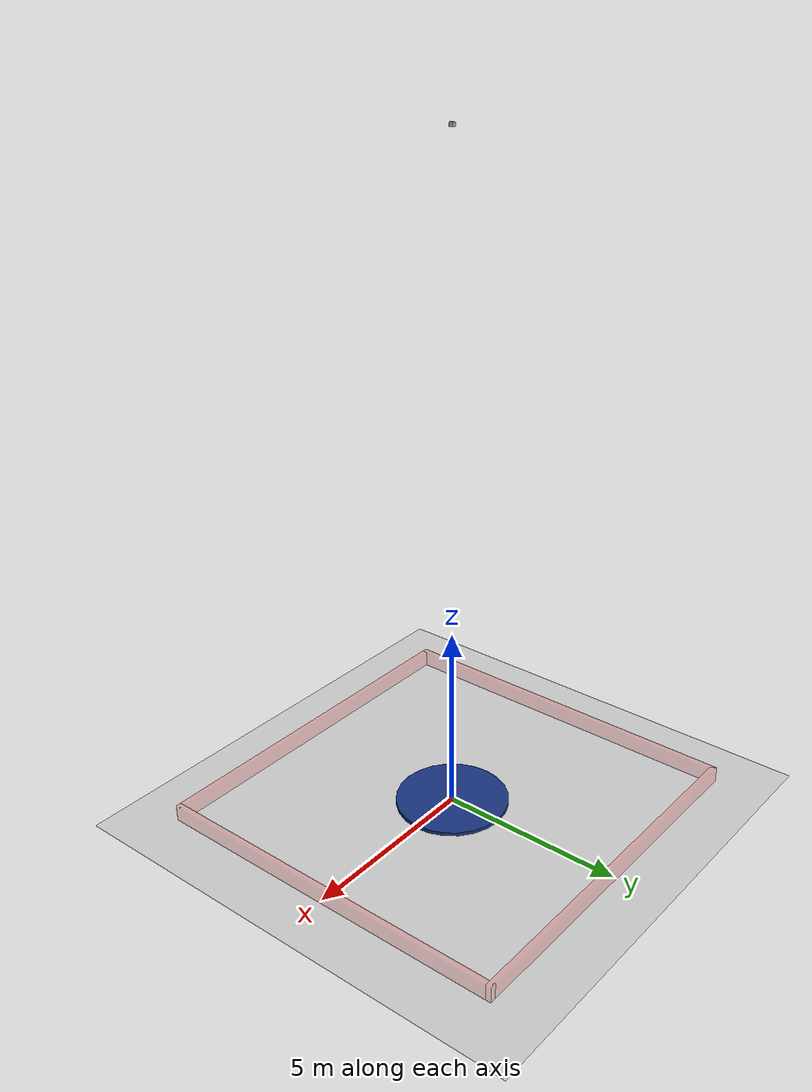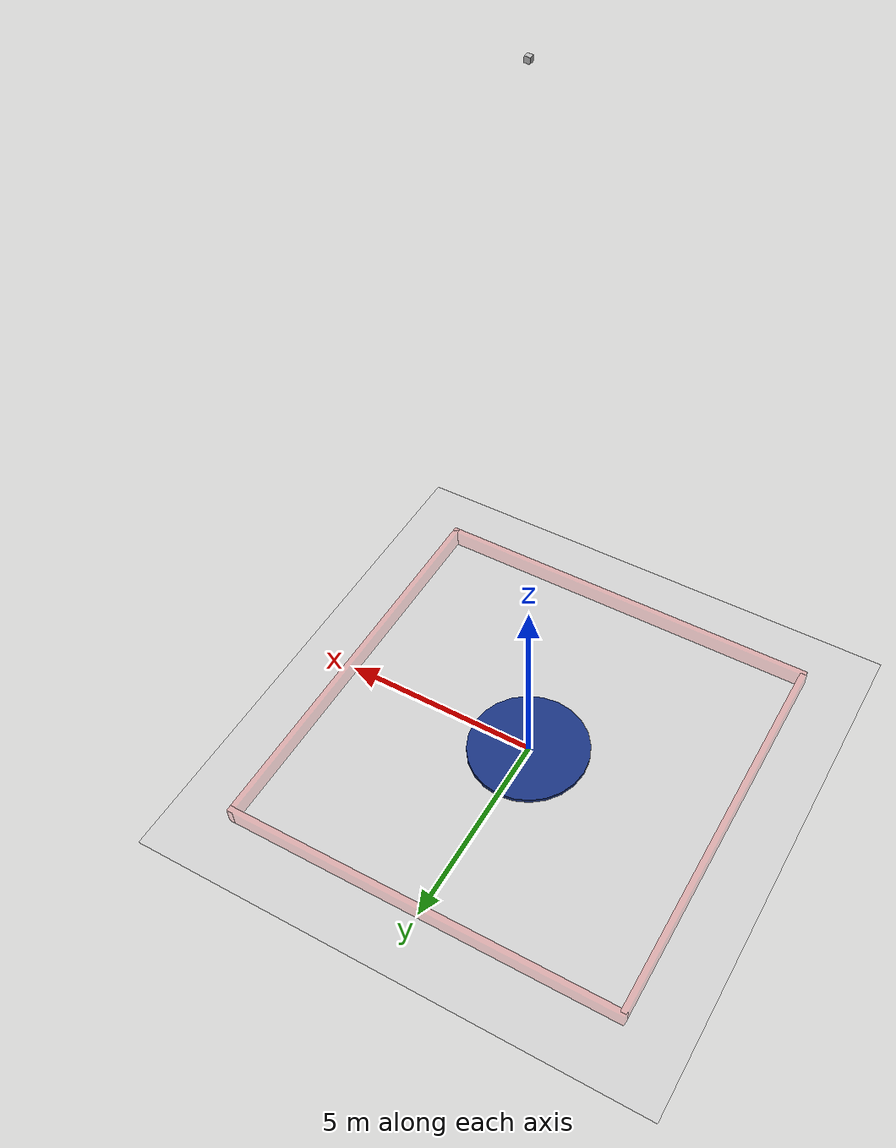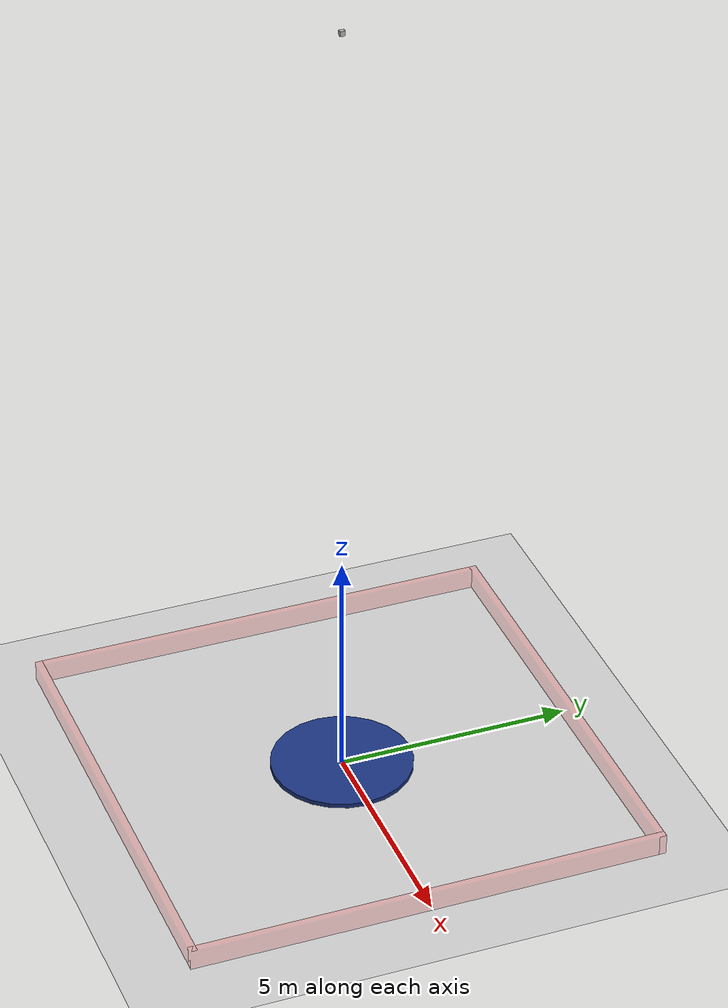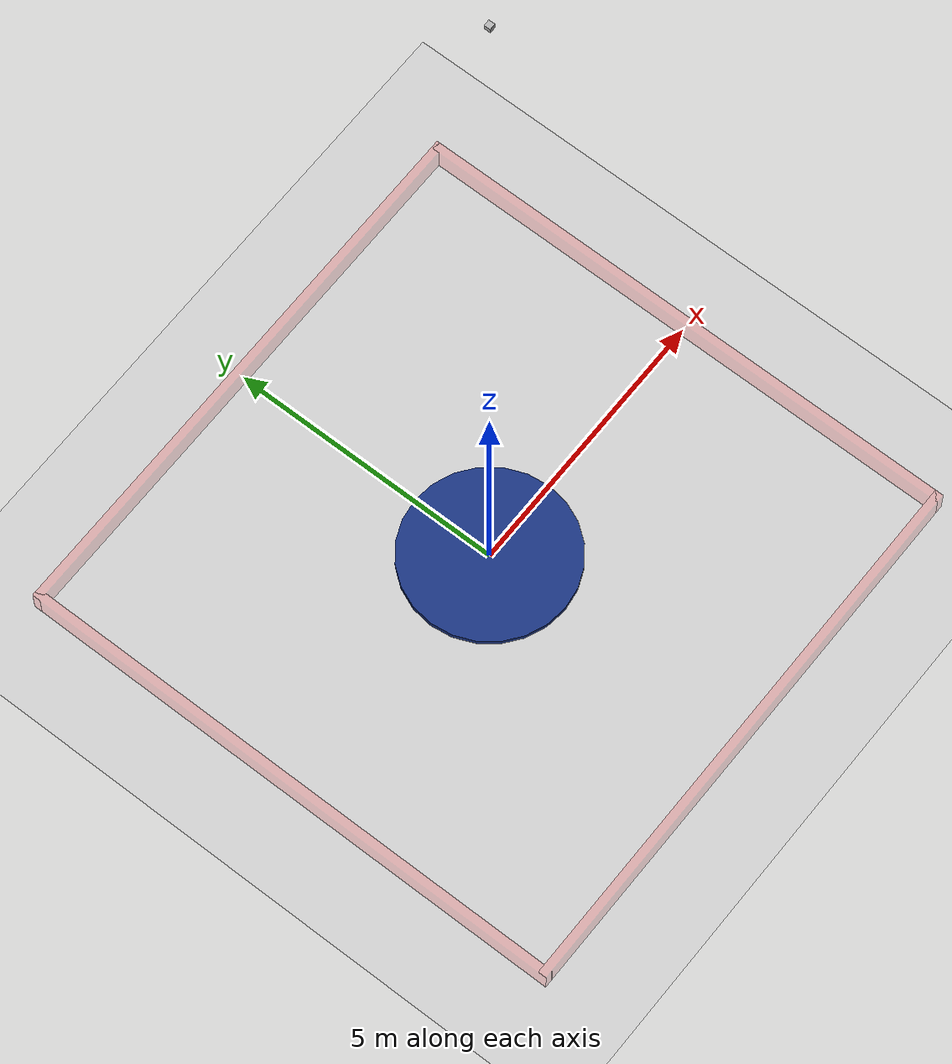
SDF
<?xml version='1.0'?>
<sdf version='1.6'>
  <world name="catch_world">

  <physics type="ode">
      <ode>
        <solver>
          <type>quick</type>
          <iters>40</iters>
          <precon_iters>0</precon_iters>
          <sor>1.300000</sor>
        </solver>
        <constraints>
          <cfm>0.000000</cfm>
          <erp>0.200000</erp>
          <contact_max_correcting_vel>100.000000</contact_max_correcting_vel>
          <contact_surface_layer>0.001000</contact_surface_layer>
        </constraints>
      </ode>
      <real_time_update_rate>0.000000</real_time_update_rate>
      <max_step_size>0.001000</max_step_size>
    </physics>

   <light name='sun' type='directional'>
      <cast_shadows>1</cast_shadows>
      <pose frame=''>0 0 50 0 -0 0</pose>
      <diffuse>0.8 0.8 0.8 1</diffuse>
      <specular>0.2 0.2 0.2 1</specular>
      <attenuation>
        <range>1000</range>
        <constant>0.9</constant>
        <linear>0.01</linear>
        <quadratic>0.001</quadratic>
      </attenuation>
      <direction>-0.5 0.1 -0.9</direction>
    </light>

    <model name='ground_plane'>
      <static>1</static>
      <link name='link'>
        <collision name='collision'>
          <geometry>
            <plane>
              <normal>0 0 1</normal>
              <size>100 100</size>
            </plane>
          </geometry>
          <surface>
            <contact>
              <collide_bitmask>65535</collide_bitmask>
              <ode/>
            </contact>
            <friction>
              <ode>
                <mu>1</mu>
                <mu2>0.5</mu2>
              </ode>
              <torsional>
                <ode/>
              </torsional>
            </friction>
            <bounce/>
          </surface>
          <max_contacts>100</max_contacts>
        </collision>
        <visual name='visual'>
          <cast_shadows>0</cast_shadows>
          <geometry>
            <plane>
              <normal>0 0 1</normal>
              <size>100 100</size>
            </plane>
            <material>
          <ambient>0.1 0.1 0.1 0.1</ambient>
        </material>
          </geometry>

        </visual>
        <self_collide>0</self_collide>
        <enable_wind>0</enable_wind>
        <kinematic>0</kinematic>
      </link>
    </model>

    <light name='sun' type='directional'>
      <cast_shadows>1</cast_shadows>
      <pose frame=''>0 0 10 0 -0 0</pose>
      <diffuse>0.8 0.8 0.8 1</diffuse>
      <specular>0.2 0.2 0.2 1</specular>
      <attenuation>
        <range>1000</range>
        <constant>0.9</constant>
        <linear>0.01</linear>
        <quadratic>0.001</quadratic>
      </attenuation>
      <direction>-0.5 0.1 -0.9</direction>
    </light>

    <scene>
      <ambient>0.4 0.4 0.4 1</ambient>
      <background>0.7 0.7 0.7 1</background>
      <shadows>1</shadows>
    </scene>
    <spherical_coordinates>
      <surface_model>EARTH_WGS84</surface_model>
      <latitude_deg>0</latitude_deg>
      <longitude_deg>0</longitude_deg>
      <elevation>0</elevation>
      <heading_deg>0</heading_deg>
    </spherical_coordinates>

    <gui fullscreen='0'>
      <camera name='user_camera'>
        <pose frame=''>2.66412 -8.85285 5.13988 0 0.455643 1.72019</pose>
        <view_controller>orbit</view_controller>
        <projection_type>perspective</projection_type>
      </camera>
    </gui>

  <model name='catch_world'>
    <pose frame=''>0 0 0 0 -0 0</pose>
    <link name='Wall_0'>
      <collision name='Wall_0_Collision'>
        <geometry>
          <box>
            <size>10.15 0.15 0.85</size>
          </box>
        </geometry>
        <pose frame=''>0 0 0 0 -0 0</pose>
      </collision>
      <visual name='Wall_0_Visual'>
        <pose frame=''>0 0 0 0 -0 0</pose>
        <geometry>
          <box>
            <size>10.15 0.15 0.85</size>
          </box>
        </geometry>
        <material>
          <ambient>1 0.1 0.1 0.1</ambient>
        </material>
        <meta>
          <layer>0</layer>
        </meta>
      </visual>
      <pose frame=''>0 -5 0 0 -0 0</pose>
    </link>
    <link name='Wall_1'>
      <collision name='Wall_1_Collision'>
        <geometry>
          <box>
            <size>10.15 0.15 0.85</size>
          </box>
        </geometry>
        <pose frame=''>0 0 0.25 0 -0 0</pose>
      </collision>
      <visual name='Wall_1_Visual'>
        <pose frame=''>0 0 0 0 -0 0</pose>
        <geometry>
          <box>
            <size>10.15 0.15 0.85</size>
          </box>
        </geometry>
        <material>

          <ambient>1 0.1 0.1 0.1</ambient>
        </material>
        <meta>
          <layer>0</layer>
        </meta>
      </visual>
      <pose frame=''>5 0 0 0 -0 1.5708</pose>
    </link>
    <link name='Wall_2'>
      <collision name='Wall_2_Collision'>
        <geometry>
          <box>
            <size>10.15 0.15 0.65</size>
          </box>
        </geometry>
        <pose frame=''>0 0 0 0 -0 0</pose>
      </collision>
      <visual name='Wall_2_Visual'>
        <pose frame=''>0 0 0 0 -0 0</pose>
        <geometry>
          <box>
            <size>10.15 0.15 0.85</size>
          </box>
        </geometry>
        <material>

          <ambient>1 0.1 0.1 0.1</ambient>
        </material>
        <meta>
          <layer>0</layer>
        </meta>
      </visual>
      <pose frame=''>0 5 0 0 -0 3.14159</pose>
    </link>
    <link name='Wall_3'>
      <collision name='Wall_3_Collision'>
        <geometry>
          <box>
            <size>10.15 0.15 0.85</size>
          </box>
        </geometry>
        <pose frame=''>0 0 0 0 -0 0</pose>
      </collision>
      <visual name='Wall_3_Visual'>
        <pose frame=''>0 0 0 0 -0 0</pose>
        <geometry>
          <box>
            <size>10.15 0.15 0.85</size>
          </box>
        </geometry>
        <material>

          <ambient>1 0.1 0.1 0.1</ambient>
        </material>
        <meta>
          <layer>0</layer>
        </meta>
      </visual>
      <pose frame=''>-5 0 0 0 -0 -1.5708</pose>
    </link>
    <static>1</static>
  </model>

<!-- Small room -->

<model name='catch_world_small'>
    <pose frame=''>0 0 -0.249 0 -0 0</pose>
    <link name='Wall_10'>
      <collision name='Wall_10_Collision'>
        <geometry>
          <cylinder>
            <radius>1.5</radius>
            <length>0.001</length>
          </cylinder>
        </geometry>
        <pose frame=''>0 0 0.25 0 -0 0</pose>
      </collision>
      <visual name='Wall_10_Visual'>
        <pose frame=''>0 0 0.25 0 -0 0</pose>
        <geometry>
          <cylinder>
            <radius>1.5</radius>
            <length>0.15</length>
          </cylinder>
        </geometry>
        <material>
          <ambient>0.1 0.2 0.5 1</ambient>
        </material>
        <meta>
          <layer>0</layer>
        </meta>
      </visual>
      <pose frame=''>0 0 0 0 -0 0</pose>
    </link>

    <static>0</static>
  </model>

  <!-- Camera for recording-->

    <model name='camera'>
      <static>true</static>
      <pose>0 0 17 0 1.47 0</pose>
      <link name='link'>
        <visual name='visual'>
          <geometry>
            <box>
              <size>0.1 0.1 0.1</size>
            </box>
          </geometry>
        </visual>
        <sensor name='gazebo_camera' type='camera'>
          <camera>
            <horizontal_fov>1.047</horizontal_fov>
            <image>
              <width>640</width>
              <height>480</height>
            </image>
            <clip>
              <near>0.1</near>
              <far>100</far>
            </clip>
          </camera>
          <always_on>1</always_on>
          <update_rate>30</update_rate>

        <plugin name="gazebo_camera" filename="libgazebo_ros_camera.so">
        <alwaysOn>true</alwaysOn>
        <updateRate>0.0</updateRate>
        <cameraName>gazebo_camera</cameraName>
        <imageTopicName>/gazebo/image_raw</imageTopicName>
        <cameraInfoTopicName>camera_info</cameraInfoTopicName>
        <frameName>camera_link</frameName>
        <hackBaseline>0.07</hackBaseline>
        <distortionK1>0.0</distortionK1>
        <distortionK2>0.0</distortionK2>
        <distortionK3>0.0</distortionK3>
        <distortionT1>0.0</distortionT1>
        <distortionT2>0.0</distortionT2>
        </plugin>

        </sensor>
      </link>
    </model>

</world>
</sdf>
